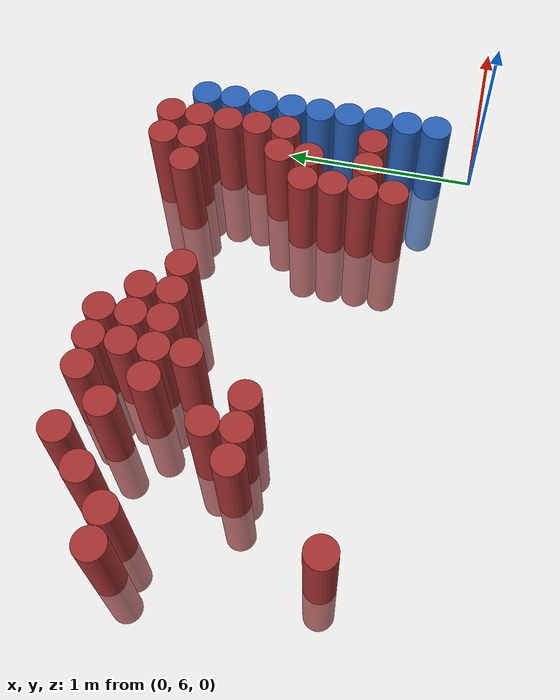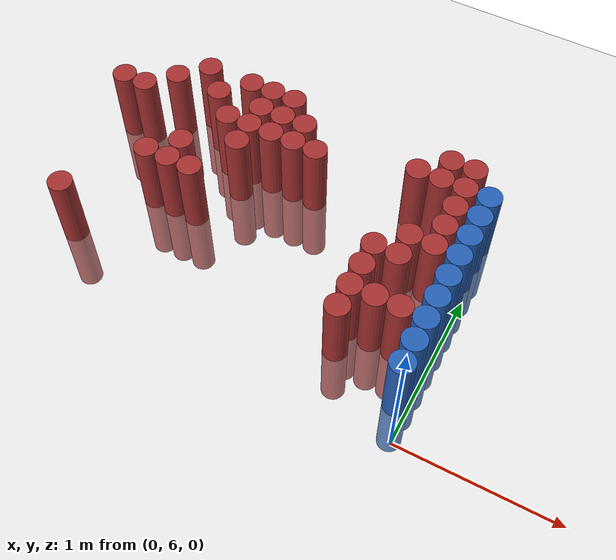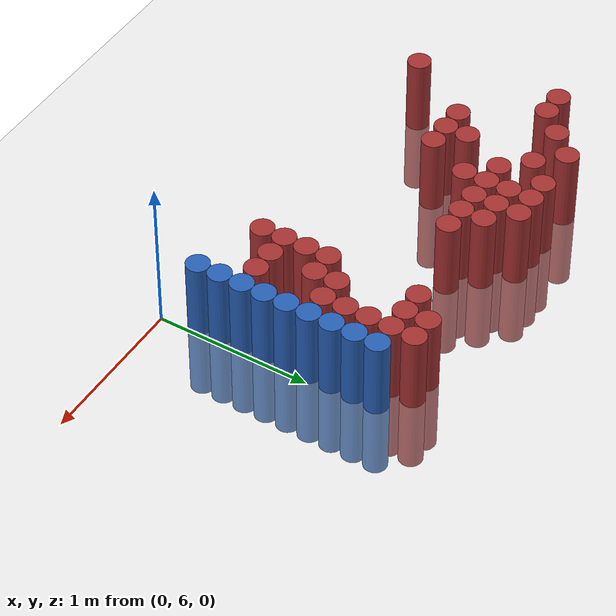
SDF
<sdf version="1.6">
 <world name="default">
  <model name="ground_plane">
   <static>1</static>
   <link name="link">
    <collision name="collision">
     <geometry><plane><normal>0 0 1</normal><size>100 100</size></plane></geometry>
     <surface><friction><ode><mu>100</mu><mu2>50</mu2></ode></friction></surface>
    </collision>
    <visual name="visual">
     <cast_shadows>0</cast_shadows>
     <geometry><plane><normal>0 0 1</normal><size>100 100</size></plane></geometry>
     <material>
      <script><uri>file://media/materials/scripts/gazebo.material</uri><name>Gazebo/Grey</name></script>
     </material>
    </visual>
   </link>
  </model>
  <model name="unit_cylinder_161">
   <static>1</static>
   <pose>-2.475000 7.275000 0.000000 0.000000 0.000000 0.000000</pose>
   <link name="link">
    <inertial>
     <mass>1</mass>
     <inertia><ixx>0.145833</ixx><ixy>0</ixy><ixz>0</ixz><iyy>0.145833</iyy><iyz>0</iyz><izz>0.125</izz></inertia>
    </inertial>
    <collision name="collision">
     <geometry><cylinder><radius>0.075000</radius><length>1</length></cylinder></geometry>
    </collision>
    <visual name="visual">
     <geometry><cylinder><radius>0.075000</radius><length>1</length></cylinder></geometry>
     <material>
      <ambient>0.648000 0.192000 0.192000 1</ambient>
      <diffuse>0.648000 0.192000 0.192000 1</diffuse>
     </material>
     <material>
      <script><name>Gazebo/Grey</name><uri>file://media/materials/scripts/gazebo.material</uri></script>
     </material>
    </visual>
   </link>
  </model>
  <model name="unit_cylinder_162">
   <static>1</static>
   <pose>-2.325000 6.375000 0.000000 0.000000 0.000000 0.000000</pose>
   <link name="link">
    <inertial>
     <mass>1</mass>
     <inertia><ixx>0.145833</ixx><ixy>0</ixy><ixz>0</ixz><iyy>0.145833</iyy><iyz>0</iyz><izz>0.125</izz></inertia>
    </inertial>
    <collision name="collision">
     <geometry><cylinder><radius>0.075000</radius><length>1</length></cylinder></geometry>
    </collision>
    <visual name="visual">
     <geometry><cylinder><radius>0.075000</radius><length>1</length></cylinder></geometry>
     <material>
      <ambient>0.648000 0.192000 0.192000 1</ambient>
      <diffuse>0.648000 0.192000 0.192000 1</diffuse>
     </material>
     <material>
      <script><name>Gazebo/Grey</name><uri>file://media/materials/scripts/gazebo.material</uri></script>
     </material>
    </visual>
   </link>
  </model>
  <model name="unit_cylinder_163">
   <static>1</static>
   <pose>-2.325000 7.275000 0.000000 0.000000 0.000000 0.000000</pose>
   <link name="link">
    <inertial>
     <mass>1</mass>
     <inertia><ixx>0.145833</ixx><ixy>0</ixy><ixz>0</ixz><iyy>0.145833</iyy><iyz>0</iyz><izz>0.125</izz></inertia>
    </inertial>
    <collision name="collision">
     <geometry><cylinder><radius>0.075000</radius><length>1</length></cylinder></geometry>
    </collision>
    <visual name="visual">
     <geometry><cylinder><radius>0.075000</radius><length>1</length></cylinder></geometry>
     <material>
      <ambient>0.648000 0.192000 0.192000 1</ambient>
      <diffuse>0.648000 0.192000 0.192000 1</diffuse>
     </material>
     <material>
      <script><name>Gazebo/Grey</name><uri>file://media/materials/scripts/gazebo.material</uri></script>
     </material>
    </visual>
   </link>
  </model>
  <model name="unit_cylinder_169">
   <static>1</static>
   <pose>-2.175000 7.425000 0.000000 0.000000 0.000000 0.000000</pose>
   <link name="link">
    <inertial>
     <mass>1</mass>
     <inertia><ixx>0.145833</ixx><ixy>0</ixy><ixz>0</ixz><iyy>0.145833</iyy><iyz>0</iyz><izz>0.125</izz></inertia>
    </inertial>
    <collision name="collision">
     <geometry><cylinder><radius>0.075000</radius><length>1</length></cylinder></geometry>
    </collision>
    <visual name="visual">
     <geometry><cylinder><radius>0.075000</radius><length>1</length></cylinder></geometry>
     <material>
      <ambient>0.648000 0.192000 0.192000 1</ambient>
      <diffuse>0.648000 0.192000 0.192000 1</diffuse>
     </material>
     <material>
      <script><name>Gazebo/Grey</name><uri>file://media/materials/scripts/gazebo.material</uri></script>
     </material>
    </visual>
   </link>
  </model>
  <model name="unit_cylinder_174">
   <static>1</static>
   <pose>-2.025000 6.825000 0.000000 0.000000 0.000000 0.000000</pose>
   <link name="link">
    <inertial>
     <mass>1</mass>
     <inertia><ixx>0.145833</ixx><ixy>0</ixy><ixz>0</ixz><iyy>0.145833</iyy><iyz>0</iyz><izz>0.125</izz></inertia>
    </inertial>
    <collision name="collision">
     <geometry><cylinder><radius>0.075000</radius><length>1</length></cylinder></geometry>
    </collision>
    <visual name="visual">
     <geometry><cylinder><radius>0.075000</radius><length>1</length></cylinder></geometry>
     <material>
      <ambient>0.648000 0.192000 0.192000 1</ambient>
      <diffuse>0.648000 0.192000 0.192000 1</diffuse>
     </material>
     <material>
      <script><name>Gazebo/Grey</name><uri>file://media/materials/scripts/gazebo.material</uri></script>
     </material>
    </visual>
   </link>
  </model>
  <model name="unit_cylinder_175">
   <static>1</static>
   <pose>-2.025000 7.575000 0.000000 0.000000 0.000000 0.000000</pose>
   <link name="link">
    <inertial>
     <mass>1</mass>
     <inertia><ixx>0.145833</ixx><ixy>0</ixy><ixz>0</ixz><iyy>0.145833</iyy><iyz>0</iyz><izz>0.125</izz></inertia>
    </inertial>
    <collision name="collision">
     <geometry><cylinder><radius>0.075000</radius><length>1</length></cylinder></geometry>
    </collision>
    <visual name="visual">
     <geometry><cylinder><radius>0.075000</radius><length>1</length></cylinder></geometry>
     <material>
      <ambient>0.648000 0.192000 0.192000 1</ambient>
      <diffuse>0.648000 0.192000 0.192000 1</diffuse>
     </material>
     <material>
      <script><name>Gazebo/Grey</name><uri>file://media/materials/scripts/gazebo.material</uri></script>
     </material>
    </visual>
   </link>
  </model>
  <model name="unit_cylinder_179">
   <static>1</static>
   <pose>-1.875000 6.825000 0.000000 0.000000 0.000000 0.000000</pose>
   <link name="link">
    <inertial>
     <mass>1</mass>
     <inertia><ixx>0.145833</ixx><ixy>0</ixy><ixz>0</ixz><iyy>0.145833</iyy><iyz>0</iyz><izz>0.125</izz></inertia>
    </inertial>
    <collision name="collision">
     <geometry><cylinder><radius>0.075000</radius><length>1</length></cylinder></geometry>
    </collision>
    <visual name="visual">
     <geometry><cylinder><radius>0.075000</radius><length>1</length></cylinder></geometry>
     <material>
      <ambient>0.648000 0.192000 0.192000 1</ambient>
      <diffuse>0.648000 0.192000 0.192000 1</diffuse>
     </material>
     <material>
      <script><name>Gazebo/Grey</name><uri>file://media/materials/scripts/gazebo.material</uri></script>
     </material>
    </visual>
   </link>
  </model>
  <model name="unit_cylinder_180">
   <static>1</static>
   <pose>-1.875000 6.975000 0.000000 0.000000 0.000000 0.000000</pose>
   <link name="link">
    <inertial>
     <mass>1</mass>
     <inertia><ixx>0.145833</ixx><ixy>0</ixy><ixz>0</ixz><iyy>0.145833</iyy><iyz>0</iyz><izz>0.125</izz></inertia>
    </inertial>
    <collision name="collision">
     <geometry><cylinder><radius>0.075000</radius><length>1</length></cylinder></geometry>
    </collision>
    <visual name="visual">
     <geometry><cylinder><radius>0.075000</radius><length>1</length></cylinder></geometry>
     <material>
      <ambient>0.648000 0.192000 0.192000 1</ambient>
      <diffuse>0.648000 0.192000 0.192000 1</diffuse>
     </material>
     <material>
      <script><name>Gazebo/Grey</name><uri>file://media/materials/scripts/gazebo.material</uri></script>
     </material>
    </visual>
   </link>
  </model>
  <model name="unit_cylinder_181">
   <static>1</static>
   <pose>-1.875000 7.425000 0.000000 0.000000 0.000000 0.000000</pose>
   <link name="link">
    <inertial>
     <mass>1</mass>
     <inertia><ixx>0.145833</ixx><ixy>0</ixy><ixz>0</ixz><iyy>0.145833</iyy><iyz>0</iyz><izz>0.125</izz></inertia>
    </inertial>
    <collision name="collision">
     <geometry><cylinder><radius>0.075000</radius><length>1</length></cylinder></geometry>
    </collision>
    <visual name="visual">
     <geometry><cylinder><radius>0.075000</radius><length>1</length></cylinder></geometry>
     <material>
      <ambient>0.648000 0.192000 0.192000 1</ambient>
      <diffuse>0.648000 0.192000 0.192000 1</diffuse>
     </material>
     <material>
      <script><name>Gazebo/Grey</name><uri>file://media/materials/scripts/gazebo.material</uri></script>
     </material>
    </visual>
   </link>
  </model>
  <model name="unit_cylinder_184">
   <static>1</static>
   <pose>-1.725000 6.825000 0.000000 0.000000 0.000000 0.000000</pose>
   <link name="link">
    <inertial>
     <mass>1</mass>
     <inertia><ixx>0.145833</ixx><ixy>0</ixy><ixz>0</ixz><iyy>0.145833</iyy><iyz>0</iyz><izz>0.125</izz></inertia>
    </inertial>
    <collision name="collision">
     <geometry><cylinder><radius>0.075000</radius><length>1</length></cylinder></geometry>
    </collision>
    <visual name="visual">
     <geometry><cylinder><radius>0.075000</radius><length>1</length></cylinder></geometry>
     <material>
      <ambient>0.648000 0.192000 0.192000 1</ambient>
      <diffuse>0.648000 0.192000 0.192000 1</diffuse>
     </material>
     <material>
      <script><name>Gazebo/Grey</name><uri>file://media/materials/scripts/gazebo.material</uri></script>
     </material>
    </visual>
   </link>
  </model>
  <model name="unit_cylinder_185">
   <static>1</static>
   <pose>-1.725000 7.275000 0.000000 0.000000 0.000000 0.000000</pose>
   <link name="link">
    <inertial>
     <mass>1</mass>
     <inertia><ixx>0.145833</ixx><ixy>0</ixy><ixz>0</ixz><iyy>0.145833</iyy><iyz>0</iyz><izz>0.125</izz></inertia>
    </inertial>
    <collision name="collision">
     <geometry><cylinder><radius>0.075000</radius><length>1</length></cylinder></geometry>
    </collision>
    <visual name="visual">
     <geometry><cylinder><radius>0.075000</radius><length>1</length></cylinder></geometry>
     <material>
      <ambient>0.648000 0.192000 0.192000 1</ambient>
      <diffuse>0.648000 0.192000 0.192000 1</diffuse>
     </material>
     <material>
      <script><name>Gazebo/Grey</name><uri>file://media/materials/scripts/gazebo.material</uri></script>
     </material>
    </visual>
   </link>
  </model>
  <model name="unit_cylinder_186">
   <static>1</static>
   <pose>-1.725000 7.575000 0.000000 0.000000 0.000000 0.000000</pose>
   <link name="link">
    <inertial>
     <mass>1</mass>
     <inertia><ixx>0.145833</ixx><ixy>0</ixy><ixz>0</ixz><iyy>0.145833</iyy><iyz>0</iyz><izz>0.125</izz></inertia>
    </inertial>
    <collision name="collision">
     <geometry><cylinder><radius>0.075000</radius><length>1</length></cylinder></geometry>
    </collision>
    <visual name="visual">
     <geometry><cylinder><radius>0.075000</radius><length>1</length></cylinder></geometry>
     <material>
      <ambient>0.648000 0.192000 0.192000 1</ambient>
      <diffuse>0.648000 0.192000 0.192000 1</diffuse>
     </material>
     <material>
      <script><name>Gazebo/Grey</name><uri>file://media/materials/scripts/gazebo.material</uri></script>
     </material>
    </visual>
   </link>
  </model>
  <model name="unit_cylinder_189">
   <static>1</static>
   <pose>-1.575000 7.125000 0.000000 0.000000 0.000000 0.000000</pose>
   <link name="link">
    <inertial>
     <mass>1</mass>
     <inertia><ixx>0.145833</ixx><ixy>0</ixy><ixz>0</ixz><iyy>0.145833</iyy><iyz>0</iyz><izz>0.125</izz></inertia>
    </inertial>
    <collision name="collision">
     <geometry><cylinder><radius>0.075000</radius><length>1</length></cylinder></geometry>
    </collision>
    <visual name="visual">
     <geometry><cylinder><radius>0.075000</radius><length>1</length></cylinder></geometry>
     <material>
      <ambient>0.648000 0.192000 0.192000 1</ambient>
      <diffuse>0.648000 0.192000 0.192000 1</diffuse>
     </material>
     <material>
      <script><name>Gazebo/Grey</name><uri>file://media/materials/scripts/gazebo.material</uri></script>
     </material>
    </visual>
   </link>
  </model>
  <model name="unit_cylinder_190">
   <static>1</static>
   <pose>-1.575000 7.275000 0.000000 0.000000 0.000000 0.000000</pose>
   <link name="link">
    <inertial>
     <mass>1</mass>
     <inertia><ixx>0.145833</ixx><ixy>0</ixy><ixz>0</ixz><iyy>0.145833</iyy><iyz>0</iyz><izz>0.125</izz></inertia>
    </inertial>
    <collision name="collision">
     <geometry><cylinder><radius>0.075000</radius><length>1</length></cylinder></geometry>
    </collision>
    <visual name="visual">
     <geometry><cylinder><radius>0.075000</radius><length>1</length></cylinder></geometry>
     <material>
      <ambient>0.648000 0.192000 0.192000 1</ambient>
      <diffuse>0.648000 0.192000 0.192000 1</diffuse>
     </material>
     <material>
      <script><name>Gazebo/Grey</name><uri>file://media/materials/scripts/gazebo.material</uri></script>
     </material>
    </visual>
   </link>
  </model>
  <model name="unit_cylinder_191">
   <static>1</static>
   <pose>-1.575000 7.425000 0.000000 0.000000 0.000000 0.000000</pose>
   <link name="link">
    <inertial>
     <mass>1</mass>
     <inertia><ixx>0.145833</ixx><ixy>0</ixy><ixz>0</ixz><iyy>0.145833</iyy><iyz>0</iyz><izz>0.125</izz></inertia>
    </inertial>
    <collision name="collision">
     <geometry><cylinder><radius>0.075000</radius><length>1</length></cylinder></geometry>
    </collision>
    <visual name="visual">
     <geometry><cylinder><radius>0.075000</radius><length>1</length></cylinder></geometry>
     <material>
      <ambient>0.648000 0.192000 0.192000 1</ambient>
      <diffuse>0.648000 0.192000 0.192000 1</diffuse>
     </material>
     <material>
      <script><name>Gazebo/Grey</name><uri>file://media/materials/scripts/gazebo.material</uri></script>
     </material>
    </visual>
   </link>
  </model>
  <model name="unit_cylinder_192">
   <static>1</static>
   <pose>-1.575000 7.575000 0.000000 0.000000 0.000000 0.000000</pose>
   <link name="link">
    <inertial>
     <mass>1</mass>
     <inertia><ixx>0.145833</ixx><ixy>0</ixy><ixz>0</ixz><iyy>0.145833</iyy><iyz>0</iyz><izz>0.125</izz></inertia>
    </inertial>
    <collision name="collision">
     <geometry><cylinder><radius>0.075000</radius><length>1</length></cylinder></geometry>
    </collision>
    <visual name="visual">
     <geometry><cylinder><radius>0.075000</radius><length>1</length></cylinder></geometry>
     <material>
      <ambient>0.648000 0.192000 0.192000 1</ambient>
      <diffuse>0.648000 0.192000 0.192000 1</diffuse>
     </material>
     <material>
      <script><name>Gazebo/Grey</name><uri>file://media/materials/scripts/gazebo.material</uri></script>
     </material>
    </visual>
   </link>
  </model>
  <model name="unit_cylinder_198">
   <static>1</static>
   <pose>-1.425000 7.275000 0.000000 0.000000 0.000000 0.000000</pose>
   <link name="link">
    <inertial>
     <mass>1</mass>
     <inertia><ixx>0.145833</ixx><ixy>0</ixy><ixz>0</ixz><iyy>0.145833</iyy><iyz>0</iyz><izz>0.125</izz></inertia>
    </inertial>
    <collision name="collision">
     <geometry><cylinder><radius>0.075000</radius><length>1</length></cylinder></geometry>
    </collision>
    <visual name="visual">
     <geometry><cylinder><radius>0.075000</radius><length>1</length></cylinder></geometry>
     <material>
      <ambient>0.648000 0.192000 0.192000 1</ambient>
      <diffuse>0.648000 0.192000 0.192000 1</diffuse>
     </material>
     <material>
      <script><name>Gazebo/Grey</name><uri>file://media/materials/scripts/gazebo.material</uri></script>
     </material>
    </visual>
   </link>
  </model>
  <model name="unit_cylinder_199">
   <static>1</static>
   <pose>-1.425000 7.425000 0.000000 0.000000 0.000000 0.000000</pose>
   <link name="link">
    <inertial>
     <mass>1</mass>
     <inertia><ixx>0.145833</ixx><ixy>0</ixy><ixz>0</ixz><iyy>0.145833</iyy><iyz>0</iyz><izz>0.125</izz></inertia>
    </inertial>
    <collision name="collision">
     <geometry><cylinder><radius>0.075000</radius><length>1</length></cylinder></geometry>
    </collision>
    <visual name="visual">
     <geometry><cylinder><radius>0.075000</radius><length>1</length></cylinder></geometry>
     <material>
      <ambient>0.648000 0.192000 0.192000 1</ambient>
      <diffuse>0.648000 0.192000 0.192000 1</diffuse>
     </material>
     <material>
      <script><name>Gazebo/Grey</name><uri>file://media/materials/scripts/gazebo.material</uri></script>
     </material>
    </visual>
   </link>
  </model>
  <model name="unit_cylinder_200">
   <static>1</static>
   <pose>-1.425000 7.575000 0.000000 0.000000 0.000000 0.000000</pose>
   <link name="link">
    <inertial>
     <mass>1</mass>
     <inertia><ixx>0.145833</ixx><ixy>0</ixy><ixz>0</ixz><iyy>0.145833</iyy><iyz>0</iyz><izz>0.125</izz></inertia>
    </inertial>
    <collision name="collision">
     <geometry><cylinder><radius>0.075000</radius><length>1</length></cylinder></geometry>
    </collision>
    <visual name="visual">
     <geometry><cylinder><radius>0.075000</radius><length>1</length></cylinder></geometry>
     <material>
      <ambient>0.648000 0.192000 0.192000 1</ambient>
      <diffuse>0.648000 0.192000 0.192000 1</diffuse>
     </material>
     <material>
      <script><name>Gazebo/Grey</name><uri>file://media/materials/scripts/gazebo.material</uri></script>
     </material>
    </visual>
   </link>
  </model>
  <model name="unit_cylinder_205">
   <static>1</static>
   <pose>-1.275000 7.275000 0.000000 0.000000 0.000000 0.000000</pose>
   <link name="link">
    <inertial>
     <mass>1</mass>
     <inertia><ixx>0.145833</ixx><ixy>0</ixy><ixz>0</ixz><iyy>0.145833</iyy><iyz>0</iyz><izz>0.125</izz></inertia>
    </inertial>
    <collision name="collision">
     <geometry><cylinder><radius>0.075000</radius><length>1</length></cylinder></geometry>
    </collision>
    <visual name="visual">
     <geometry><cylinder><radius>0.075000</radius><length>1</length></cylinder></geometry>
     <material>
      <ambient>0.648000 0.192000 0.192000 1</ambient>
      <diffuse>0.648000 0.192000 0.192000 1</diffuse>
     </material>
     <material>
      <script><name>Gazebo/Grey</name><uri>file://media/materials/scripts/gazebo.material</uri></script>
     </material>
    </visual>
   </link>
  </model>
  <model name="unit_cylinder_206">
   <static>1</static>
   <pose>-1.275000 7.425000 0.000000 0.000000 0.000000 0.000000</pose>
   <link name="link">
    <inertial>
     <mass>1</mass>
     <inertia><ixx>0.145833</ixx><ixy>0</ixy><ixz>0</ixz><iyy>0.145833</iyy><iyz>0</iyz><izz>0.125</izz></inertia>
    </inertial>
    <collision name="collision">
     <geometry><cylinder><radius>0.075000</radius><length>1</length></cylinder></geometry>
    </collision>
    <visual name="visual">
     <geometry><cylinder><radius>0.075000</radius><length>1</length></cylinder></geometry>
     <material>
      <ambient>0.648000 0.192000 0.192000 1</ambient>
      <diffuse>0.648000 0.192000 0.192000 1</diffuse>
     </material>
     <material>
      <script><name>Gazebo/Grey</name><uri>file://media/materials/scripts/gazebo.material</uri></script>
     </material>
    </visual>
   </link>
  </model>
  <model name="unit_cylinder_213">
   <static>1</static>
   <pose>-1.125000 7.275000 0.000000 0.000000 0.000000 0.000000</pose>
   <link name="link">
    <inertial>
     <mass>1</mass>
     <inertia><ixx>0.145833</ixx><ixy>0</ixy><ixz>0</ixz><iyy>0.145833</iyy><iyz>0</iyz><izz>0.125</izz></inertia>
    </inertial>
    <collision name="collision">
     <geometry><cylinder><radius>0.075000</radius><length>1</length></cylinder></geometry>
    </collision>
    <visual name="visual">
     <geometry><cylinder><radius>0.075000</radius><length>1</length></cylinder></geometry>
     <material>
      <ambient>0.648000 0.192000 0.192000 1</ambient>
      <diffuse>0.648000 0.192000 0.192000 1</diffuse>
     </material>
     <material>
      <script><name>Gazebo/Grey</name><uri>file://media/materials/scripts/gazebo.material</uri></script>
     </material>
    </visual>
   </link>
  </model>
  <model name="unit_cylinder_222">
   <static>1</static>
   <pose>-0.525000 6.375000 0.000000 0.000000 0.000000 0.000000</pose>
   <link name="link">
    <inertial>
     <mass>1</mass>
     <inertia><ixx>0.145833</ixx><ixy>0</ixy><ixz>0</ixz><iyy>0.145833</iyy><iyz>0</iyz><izz>0.125</izz></inertia>
    </inertial>
    <collision name="collision">
     <geometry><cylinder><radius>0.075000</radius><length>1</length></cylinder></geometry>
    </collision>
    <visual name="visual">
     <geometry><cylinder><radius>0.075000</radius><length>1</length></cylinder></geometry>
     <material>
      <ambient>0.648000 0.192000 0.192000 1</ambient>
      <diffuse>0.648000 0.192000 0.192000 1</diffuse>
     </material>
     <material>
      <script><name>Gazebo/Grey</name><uri>file://media/materials/scripts/gazebo.material</uri></script>
     </material>
    </visual>
   </link>
  </model>
  <model name="unit_cylinder_223">
   <static>1</static>
   <pose>-0.525000 6.525000 0.000000 0.000000 0.000000 0.000000</pose>
   <link name="link">
    <inertial>
     <mass>1</mass>
     <inertia><ixx>0.145833</ixx><ixy>0</ixy><ixz>0</ixz><iyy>0.145833</iyy><iyz>0</iyz><izz>0.125</izz></inertia>
    </inertial>
    <collision name="collision">
     <geometry><cylinder><radius>0.075000</radius><length>1</length></cylinder></geometry>
    </collision>
    <visual name="visual">
     <geometry><cylinder><radius>0.075000</radius><length>1</length></cylinder></geometry>
     <material>
      <ambient>0.648000 0.192000 0.192000 1</ambient>
      <diffuse>0.648000 0.192000 0.192000 1</diffuse>
     </material>
     <material>
      <script><name>Gazebo/Grey</name><uri>file://media/materials/scripts/gazebo.material</uri></script>
     </material>
    </visual>
   </link>
  </model>
  <model name="unit_cylinder_224">
   <static>1</static>
   <pose>-0.525000 6.675000 0.000000 0.000000 0.000000 0.000000</pose>
   <link name="link">
    <inertial>
     <mass>1</mass>
     <inertia><ixx>0.145833</ixx><ixy>0</ixy><ixz>0</ixz><iyy>0.145833</iyy><iyz>0</iyz><izz>0.125</izz></inertia>
    </inertial>
    <collision name="collision">
     <geometry><cylinder><radius>0.075000</radius><length>1</length></cylinder></geometry>
    </collision>
    <visual name="visual">
     <geometry><cylinder><radius>0.075000</radius><length>1</length></cylinder></geometry>
     <material>
      <ambient>0.648000 0.192000 0.192000 1</ambient>
      <diffuse>0.648000 0.192000 0.192000 1</diffuse>
     </material>
     <material>
      <script><name>Gazebo/Grey</name><uri>file://media/materials/scripts/gazebo.material</uri></script>
     </material>
    </visual>
   </link>
  </model>
  <model name="unit_cylinder_225">
   <static>1</static>
   <pose>-0.525000 6.825000 0.000000 0.000000 0.000000 0.000000</pose>
   <link name="link">
    <inertial>
     <mass>1</mass>
     <inertia><ixx>0.145833</ixx><ixy>0</ixy><ixz>0</ixz><iyy>0.145833</iyy><iyz>0</iyz><izz>0.125</izz></inertia>
    </inertial>
    <collision name="collision">
     <geometry><cylinder><radius>0.075000</radius><length>1</length></cylinder></geometry>
    </collision>
    <visual name="visual">
     <geometry><cylinder><radius>0.075000</radius><length>1</length></cylinder></geometry>
     <material>
      <ambient>0.648000 0.192000 0.192000 1</ambient>
      <diffuse>0.648000 0.192000 0.192000 1</diffuse>
     </material>
     <material>
      <script><name>Gazebo/Grey</name><uri>file://media/materials/scripts/gazebo.material</uri></script>
     </material>
    </visual>
   </link>
  </model>
  <model name="unit_cylinder_226">
   <static>1</static>
   <pose>-0.525000 7.425000 0.000000 0.000000 0.000000 0.000000</pose>
   <link name="link">
    <inertial>
     <mass>1</mass>
     <inertia><ixx>0.145833</ixx><ixy>0</ixy><ixz>0</ixz><iyy>0.145833</iyy><iyz>0</iyz><izz>0.125</izz></inertia>
    </inertial>
    <collision name="collision">
     <geometry><cylinder><radius>0.075000</radius><length>1</length></cylinder></geometry>
    </collision>
    <visual name="visual">
     <geometry><cylinder><radius>0.075000</radius><length>1</length></cylinder></geometry>
     <material>
      <ambient>0.648000 0.192000 0.192000 1</ambient>
      <diffuse>0.648000 0.192000 0.192000 1</diffuse>
     </material>
     <material>
      <script><name>Gazebo/Grey</name><uri>file://media/materials/scripts/gazebo.material</uri></script>
     </material>
    </visual>
   </link>
  </model>
  <model name="unit_cylinder_229">
   <static>1</static>
   <pose>-0.375000 6.525000 0.000000 0.000000 0.000000 0.000000</pose>
   <link name="link">
    <inertial>
     <mass>1</mass>
     <inertia><ixx>0.145833</ixx><ixy>0</ixy><ixz>0</ixz><iyy>0.145833</iyy><iyz>0</iyz><izz>0.125</izz></inertia>
    </inertial>
    <collision name="collision">
     <geometry><cylinder><radius>0.075000</radius><length>1</length></cylinder></geometry>
    </collision>
    <visual name="visual">
     <geometry><cylinder><radius>0.075000</radius><length>1</length></cylinder></geometry>
     <material>
      <ambient>0.648000 0.192000 0.192000 1</ambient>
      <diffuse>0.648000 0.192000 0.192000 1</diffuse>
     </material>
     <material>
      <script><name>Gazebo/Grey</name><uri>file://media/materials/scripts/gazebo.material</uri></script>
     </material>
    </visual>
   </link>
  </model>
  <model name="unit_cylinder_230">
   <static>1</static>
   <pose>-0.375000 6.825000 0.000000 0.000000 0.000000 0.000000</pose>
   <link name="link">
    <inertial>
     <mass>1</mass>
     <inertia><ixx>0.145833</ixx><ixy>0</ixy><ixz>0</ixz><iyy>0.145833</iyy><iyz>0</iyz><izz>0.125</izz></inertia>
    </inertial>
    <collision name="collision">
     <geometry><cylinder><radius>0.075000</radius><length>1</length></cylinder></geometry>
    </collision>
    <visual name="visual">
     <geometry><cylinder><radius>0.075000</radius><length>1</length></cylinder></geometry>
     <material>
      <ambient>0.648000 0.192000 0.192000 1</ambient>
      <diffuse>0.648000 0.192000 0.192000 1</diffuse>
     </material>
     <material>
      <script><name>Gazebo/Grey</name><uri>file://media/materials/scripts/gazebo.material</uri></script>
     </material>
    </visual>
   </link>
  </model>
  <model name="unit_cylinder_231">
   <static>1</static>
   <pose>-0.375000 6.975000 0.000000 0.000000 0.000000 0.000000</pose>
   <link name="link">
    <inertial>
     <mass>1</mass>
     <inertia><ixx>0.145833</ixx><ixy>0</ixy><ixz>0</ixz><iyy>0.145833</iyy><iyz>0</iyz><izz>0.125</izz></inertia>
    </inertial>
    <collision name="collision">
     <geometry><cylinder><radius>0.075000</radius><length>1</length></cylinder></geometry>
    </collision>
    <visual name="visual">
     <geometry><cylinder><radius>0.075000</radius><length>1</length></cylinder></geometry>
     <material>
      <ambient>0.648000 0.192000 0.192000 1</ambient>
      <diffuse>0.648000 0.192000 0.192000 1</diffuse>
     </material>
     <material>
      <script><name>Gazebo/Grey</name><uri>file://media/materials/scripts/gazebo.material</uri></script>
     </material>
    </visual>
   </link>
  </model>
  <model name="unit_cylinder_232">
   <static>1</static>
   <pose>-0.375000 7.425000 0.000000 0.000000 0.000000 0.000000</pose>
   <link name="link">
    <inertial>
     <mass>1</mass>
     <inertia><ixx>0.145833</ixx><ixy>0</ixy><ixz>0</ixz><iyy>0.145833</iyy><iyz>0</iyz><izz>0.125</izz></inertia>
    </inertial>
    <collision name="collision">
     <geometry><cylinder><radius>0.075000</radius><length>1</length></cylinder></geometry>
    </collision>
    <visual name="visual">
     <geometry><cylinder><radius>0.075000</radius><length>1</length></cylinder></geometry>
     <material>
      <ambient>0.648000 0.192000 0.192000 1</ambient>
      <diffuse>0.648000 0.192000 0.192000 1</diffuse>
     </material>
     <material>
      <script><name>Gazebo/Grey</name><uri>file://media/materials/scripts/gazebo.material</uri></script>
     </material>
    </visual>
   </link>
  </model>
  <model name="unit_cylinder_233">
   <static>1</static>
   <pose>-0.375000 7.575000 0.000000 0.000000 0.000000 0.000000</pose>
   <link name="link">
    <inertial>
     <mass>1</mass>
     <inertia><ixx>0.145833</ixx><ixy>0</ixy><ixz>0</ixz><iyy>0.145833</iyy><iyz>0</iyz><izz>0.125</izz></inertia>
    </inertial>
    <collision name="collision">
     <geometry><cylinder><radius>0.075000</radius><length>1</length></cylinder></geometry>
    </collision>
    <visual name="visual">
     <geometry><cylinder><radius>0.075000</radius><length>1</length></cylinder></geometry>
     <material>
      <ambient>0.648000 0.192000 0.192000 1</ambient>
      <diffuse>0.648000 0.192000 0.192000 1</diffuse>
     </material>
     <material>
      <script><name>Gazebo/Grey</name><uri>file://media/materials/scripts/gazebo.material</uri></script>
     </material>
    </visual>
   </link>
  </model>
  <model name="unit_cylinder_242">
   <static>1</static>
   <pose>-0.225000 6.525000 0.000000 0.000000 0.000000 0.000000</pose>
   <link name="link">
    <inertial>
     <mass>1</mass>
     <inertia><ixx>0.145833</ixx><ixy>0</ixy><ixz>0</ixz><iyy>0.145833</iyy><iyz>0</iyz><izz>0.125</izz></inertia>
    </inertial>
    <collision name="collision">
     <geometry><cylinder><radius>0.075000</radius><length>1</length></cylinder></geometry>
    </collision>
    <visual name="visual">
     <geometry><cylinder><radius>0.075000</radius><length>1</length></cylinder></geometry>
     <material>
      <ambient>0.648000 0.192000 0.192000 1</ambient>
      <diffuse>0.648000 0.192000 0.192000 1</diffuse>
     </material>
     <material>
      <script><name>Gazebo/Grey</name><uri>file://media/materials/scripts/gazebo.material</uri></script>
     </material>
    </visual>
   </link>
  </model>
  <model name="unit_cylinder_243">
   <static>1</static>
   <pose>-0.225000 6.975000 0.000000 0.000000 0.000000 0.000000</pose>
   <link name="link">
    <inertial>
     <mass>1</mass>
     <inertia><ixx>0.145833</ixx><ixy>0</ixy><ixz>0</ixz><iyy>0.145833</iyy><iyz>0</iyz><izz>0.125</izz></inertia>
    </inertial>
    <collision name="collision">
     <geometry><cylinder><radius>0.075000</radius><length>1</length></cylinder></geometry>
    </collision>
    <visual name="visual">
     <geometry><cylinder><radius>0.075000</radius><length>1</length></cylinder></geometry>
     <material>
      <ambient>0.648000 0.192000 0.192000 1</ambient>
      <diffuse>0.648000 0.192000 0.192000 1</diffuse>
     </material>
     <material>
      <script><name>Gazebo/Grey</name><uri>file://media/materials/scripts/gazebo.material</uri></script>
     </material>
    </visual>
   </link>
  </model>
  <model name="unit_cylinder_244">
   <static>1</static>
   <pose>-0.225000 7.125000 0.000000 0.000000 0.000000 0.000000</pose>
   <link name="link">
    <inertial>
     <mass>1</mass>
     <inertia><ixx>0.145833</ixx><ixy>0</ixy><ixz>0</ixz><iyy>0.145833</iyy><iyz>0</iyz><izz>0.125</izz></inertia>
    </inertial>
    <collision name="collision">
     <geometry><cylinder><radius>0.075000</radius><length>1</length></cylinder></geometry>
    </collision>
    <visual name="visual">
     <geometry><cylinder><radius>0.075000</radius><length>1</length></cylinder></geometry>
     <material>
      <ambient>0.648000 0.192000 0.192000 1</ambient>
      <diffuse>0.648000 0.192000 0.192000 1</diffuse>
     </material>
     <material>
      <script><name>Gazebo/Grey</name><uri>file://media/materials/scripts/gazebo.material</uri></script>
     </material>
    </visual>
   </link>
  </model>
  <model name="unit_cylinder_245">
   <static>1</static>
   <pose>-0.225000 7.275000 0.000000 0.000000 0.000000 0.000000</pose>
   <link name="link">
    <inertial>
     <mass>1</mass>
     <inertia><ixx>0.145833</ixx><ixy>0</ixy><ixz>0</ixz><iyy>0.145833</iyy><iyz>0</iyz><izz>0.125</izz></inertia>
    </inertial>
    <collision name="collision">
     <geometry><cylinder><radius>0.075000</radius><length>1</length></cylinder></geometry>
    </collision>
    <visual name="visual">
     <geometry><cylinder><radius>0.075000</radius><length>1</length></cylinder></geometry>
     <material>
      <ambient>0.648000 0.192000 0.192000 1</ambient>
      <diffuse>0.648000 0.192000 0.192000 1</diffuse>
     </material>
     <material>
      <script><name>Gazebo/Grey</name><uri>file://media/materials/scripts/gazebo.material</uri></script>
     </material>
    </visual>
   </link>
  </model>
  <model name="unit_cylinder_246">
   <static>1</static>
   <pose>-0.225000 7.425000 0.000000 0.000000 0.000000 0.000000</pose>
   <link name="link">
    <inertial>
     <mass>1</mass>
     <inertia><ixx>0.145833</ixx><ixy>0</ixy><ixz>0</ixz><iyy>0.145833</iyy><iyz>0</iyz><izz>0.125</izz></inertia>
    </inertial>
    <collision name="collision">
     <geometry><cylinder><radius>0.075000</radius><length>1</length></cylinder></geometry>
    </collision>
    <visual name="visual">
     <geometry><cylinder><radius>0.075000</radius><length>1</length></cylinder></geometry>
     <material>
      <ambient>0.648000 0.192000 0.192000 1</ambient>
      <diffuse>0.648000 0.192000 0.192000 1</diffuse>
     </material>
     <material>
      <script><name>Gazebo/Grey</name><uri>file://media/materials/scripts/gazebo.material</uri></script>
     </material>
    </visual>
   </link>
  </model>
  <model name="unit_cylinder_247">
   <static>1</static>
   <pose>-0.225000 7.575000 0.000000 0.000000 0.000000 0.000000</pose>
   <link name="link">
    <inertial>
     <mass>1</mass>
     <inertia><ixx>0.145833</ixx><ixy>0</ixy><ixz>0</ixz><iyy>0.145833</iyy><iyz>0</iyz><izz>0.125</izz></inertia>
    </inertial>
    <collision name="collision">
     <geometry><cylinder><radius>0.075000</radius><length>1</length></cylinder></geometry>
    </collision>
    <visual name="visual">
     <geometry><cylinder><radius>0.075000</radius><length>1</length></cylinder></geometry>
     <material>
      <ambient>0.648000 0.192000 0.192000 1</ambient>
      <diffuse>0.648000 0.192000 0.192000 1</diffuse>
     </material>
     <material>
      <script><name>Gazebo/Grey</name><uri>file://media/materials/scripts/gazebo.material</uri></script>
     </material>
    </visual>
   </link>
  </model>
  <model name="unit_cylinder_263">
   <static>1</static>
   <pose>-0.075000 6.225000 0.000000 0.000000 0.000000 0.000000</pose>
   <link name="link">
    <inertial>
     <mass>1</mass>
     <inertia><ixx>0.145833</ixx><ixy>0</ixy><ixz>0</ixz><iyy>0.145833</iyy><iyz>0</iyz><izz>0.125</izz></inertia>
    </inertial>
    <collision name="collision">
     <geometry><cylinder><radius>0.075000</radius><length>1</length></cylinder></geometry>
    </collision>
    <visual name="visual">
     <geometry><cylinder><radius>0.075000</radius><length>1</length></cylinder></geometry>
     <material>
      <ambient>0.152000 0.379000 0.720000 1</ambient>
      <diffuse>0.152000 0.379000 0.720000 1</diffuse>
     </material>
     <material>
      <script><name>Gazebo/Grey</name><uri>file://media/materials/scripts/gazebo.material</uri></script>
     </material>
    </visual>
   </link>
  </model>
  <model name="unit_cylinder_264">
   <static>1</static>
   <pose>-0.075000 6.375000 0.000000 0.000000 0.000000 0.000000</pose>
   <link name="link">
    <inertial>
     <mass>1</mass>
     <inertia><ixx>0.145833</ixx><ixy>0</ixy><ixz>0</ixz><iyy>0.145833</iyy><iyz>0</iyz><izz>0.125</izz></inertia>
    </inertial>
    <collision name="collision">
     <geometry><cylinder><radius>0.075000</radius><length>1</length></cylinder></geometry>
    </collision>
    <visual name="visual">
     <geometry><cylinder><radius>0.075000</radius><length>1</length></cylinder></geometry>
     <material>
      <ambient>0.152000 0.379000 0.720000 1</ambient>
      <diffuse>0.152000 0.379000 0.720000 1</diffuse>
     </material>
     <material>
      <script><name>Gazebo/Grey</name><uri>file://media/materials/scripts/gazebo.material</uri></script>
     </material>
    </visual>
   </link>
  </model>
  <model name="unit_cylinder_265">
   <static>1</static>
   <pose>-0.075000 6.525000 0.000000 0.000000 0.000000 0.000000</pose>
   <link name="link">
    <inertial>
     <mass>1</mass>
     <inertia><ixx>0.145833</ixx><ixy>0</ixy><ixz>0</ixz><iyy>0.145833</iyy><iyz>0</iyz><izz>0.125</izz></inertia>
    </inertial>
    <collision name="collision">
     <geometry><cylinder><radius>0.075000</radius><length>1</length></cylinder></geometry>
    </collision>
    <visual name="visual">
     <geometry><cylinder><radius>0.075000</radius><length>1</length></cylinder></geometry>
     <material>
      <ambient>0.152000 0.379000 0.720000 1</ambient>
      <diffuse>0.152000 0.379000 0.720000 1</diffuse>
     </material>
     <material>
      <script><name>Gazebo/Grey</name><uri>file://media/materials/scripts/gazebo.material</uri></script>
     </material>
    </visual>
   </link>
  </model>
  <model name="unit_cylinder_266">
   <static>1</static>
   <pose>-0.075000 6.675000 0.000000 0.000000 0.000000 0.000000</pose>
   <link name="link">
    <inertial>
     <mass>1</mass>
     <inertia><ixx>0.145833</ixx><ixy>0</ixy><ixz>0</ixz><iyy>0.145833</iyy><iyz>0</iyz><izz>0.125</izz></inertia>
    </inertial>
    <collision name="collision">
     <geometry><cylinder><radius>0.075000</radius><length>1</length></cylinder></geometry>
    </collision>
    <visual name="visual">
     <geometry><cylinder><radius>0.075000</radius><length>1</length></cylinder></geometry>
     <material>
      <ambient>0.152000 0.379000 0.720000 1</ambient>
      <diffuse>0.152000 0.379000 0.720000 1</diffuse>
     </material>
     <material>
      <script><name>Gazebo/Grey</name><uri>file://media/materials/scripts/gazebo.material</uri></script>
     </material>
    </visual>
   </link>
  </model>
  <model name="unit_cylinder_267">
   <static>1</static>
   <pose>-0.075000 6.825000 0.000000 0.000000 0.000000 0.000000</pose>
   <link name="link">
    <inertial>
     <mass>1</mass>
     <inertia><ixx>0.145833</ixx><ixy>0</ixy><ixz>0</ixz><iyy>0.145833</iyy><iyz>0</iyz><izz>0.125</izz></inertia>
    </inertial>
    <collision name="collision">
     <geometry><cylinder><radius>0.075000</radius><length>1</length></cylinder></geometry>
    </collision>
    <visual name="visual">
     <geometry><cylinder><radius>0.075000</radius><length>1</length></cylinder></geometry>
     <material>
      <ambient>0.152000 0.379000 0.720000 1</ambient>
      <diffuse>0.152000 0.379000 0.720000 1</diffuse>
     </material>
     <material>
      <script><name>Gazebo/Grey</name><uri>file://media/materials/scripts/gazebo.material</uri></script>
     </material>
    </visual>
   </link>
  </model>
  <model name="unit_cylinder_268">
   <static>1</static>
   <pose>-0.075000 6.975000 0.000000 0.000000 0.000000 0.000000</pose>
   <link name="link">
    <inertial>
     <mass>1</mass>
     <inertia><ixx>0.145833</ixx><ixy>0</ixy><ixz>0</ixz><iyy>0.145833</iyy><iyz>0</iyz><izz>0.125</izz></inertia>
    </inertial>
    <collision name="collision">
     <geometry><cylinder><radius>0.075000</radius><length>1</length></cylinder></geometry>
    </collision>
    <visual name="visual">
     <geometry><cylinder><radius>0.075000</radius><length>1</length></cylinder></geometry>
     <material>
      <ambient>0.152000 0.379000 0.720000 1</ambient>
      <diffuse>0.152000 0.379000 0.720000 1</diffuse>
     </material>
     <material>
      <script><name>Gazebo/Grey</name><uri>file://media/materials/scripts/gazebo.material</uri></script>
     </material>
    </visual>
   </link>
  </model>
  <model name="unit_cylinder_269">
   <static>1</static>
   <pose>-0.075000 7.125000 0.000000 0.000000 0.000000 0.000000</pose>
   <link name="link">
    <inertial>
     <mass>1</mass>
     <inertia><ixx>0.145833</ixx><ixy>0</ixy><ixz>0</ixz><iyy>0.145833</iyy><iyz>0</iyz><izz>0.125</izz></inertia>
    </inertial>
    <collision name="collision">
     <geometry><cylinder><radius>0.075000</radius><length>1</length></cylinder></geometry>
    </collision>
    <visual name="visual">
     <geometry><cylinder><radius>0.075000</radius><length>1</length></cylinder></geometry>
     <material>
      <ambient>0.152000 0.379000 0.720000 1</ambient>
      <diffuse>0.152000 0.379000 0.720000 1</diffuse>
     </material>
     <material>
      <script><name>Gazebo/Grey</name><uri>file://media/materials/scripts/gazebo.material</uri></script>
     </material>
    </visual>
   </link>
  </model>
  <model name="unit_cylinder_270">
   <static>1</static>
   <pose>-0.075000 7.275000 0.000000 0.000000 0.000000 0.000000</pose>
   <link name="link">
    <inertial>
     <mass>1</mass>
     <inertia><ixx>0.145833</ixx><ixy>0</ixy><ixz>0</ixz><iyy>0.145833</iyy><iyz>0</iyz><izz>0.125</izz></inertia>
    </inertial>
    <collision name="collision">
     <geometry><cylinder><radius>0.075000</radius><length>1</length></cylinder></geometry>
    </collision>
    <visual name="visual">
     <geometry><cylinder><radius>0.075000</radius><length>1</length></cylinder></geometry>
     <material>
      <ambient>0.152000 0.379000 0.720000 1</ambient>
      <diffuse>0.152000 0.379000 0.720000 1</diffuse>
     </material>
     <material>
      <script><name>Gazebo/Grey</name><uri>file://media/materials/scripts/gazebo.material</uri></script>
     </material>
    </visual>
   </link>
  </model>
  <model name="unit_cylinder_271">
   <static>1</static>
   <pose>-0.075000 7.425000 0.000000 0.000000 0.000000 0.000000</pose>
   <link name="link">
    <inertial>
     <mass>1</mass>
     <inertia><ixx>0.145833</ixx><ixy>0</ixy><ixz>0</ixz><iyy>0.145833</iyy><iyz>0</iyz><izz>0.125</izz></inertia>
    </inertial>
    <collision name="collision">
     <geometry><cylinder><radius>0.075000</radius><length>1</length></cylinder></geometry>
    </collision>
    <visual name="visual">
     <geometry><cylinder><radius>0.075000</radius><length>1</length></cylinder></geometry>
     <material>
      <ambient>0.152000 0.379000 0.720000 1</ambient>
      <diffuse>0.152000 0.379000 0.720000 1</diffuse>
     </material>
     <material>
      <script><name>Gazebo/Grey</name><uri>file://media/materials/scripts/gazebo.material</uri></script>
     </material>
    </visual>
   </link>
  </model>
 </world>
</sdf>
